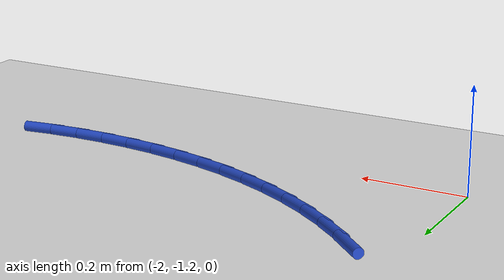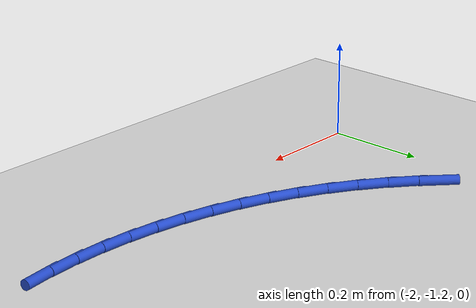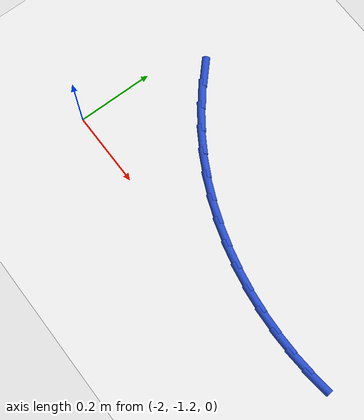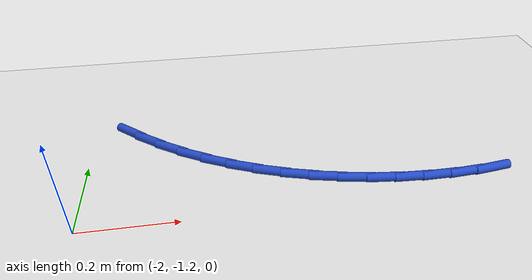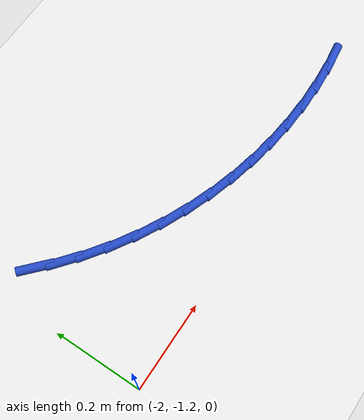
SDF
<sdf version="1.6">
 <world name="default">
  <model name="ground_plane">
   <static>1</static>
   <link name="link">
    <collision name="collision">
     <geometry><plane><normal>0 0 1</normal><size>100 100</size></plane></geometry>
     <surface><friction><ode><mu>100</mu><mu2>50</mu2></ode></friction></surface>
    </collision>
    <visual name="visual">
     <cast_shadows>0</cast_shadows>
     <geometry><plane><normal>0 0 1</normal><size>100 100</size></plane></geometry>
     <material>
      <script><uri>file://media/materials/scripts/gazebo.material</uri><name>Gazebo/WhiteGlow</name></script>
     </material>
    </visual>
   </link>
  </model>
  <model name="line">
   <link name="link_76">
    <pose>-1.9172609893093802 -0.8833066533043794 0.01 0 1.57 -0.7458619114485167</pose>
    <collision name="collision">
     <geometry><cylinder><radius>0.01</radius><length>0.08</length></cylinder></geometry>
    </collision>
    <visual name="visual">
     <material>
      <script><name>Gazebo/Blue</name><uri>file://media/materials/scripts/gazebo.material</uri></script>
     </material>
     <geometry><cylinder><radius>0.01</radius><length>0.08</length></cylinder></geometry>
    </visual>
   </link>
   <link name="link_77">
    <pose>-1.872279661193104 -0.9248647529805509 0.01 0 1.57 -0.6775343800400581</pose>
    <collision name="collision">
     <geometry><cylinder><radius>0.01</radius><length>0.08</length></cylinder></geometry>
    </collision>
    <visual name="visual">
     <material>
      <script><name>Gazebo/Blue</name><uri>file://media/materials/scripts/gazebo.material</uri></script>
     </material>
     <geometry><cylinder><radius>0.01</radius><length>0.08</length></cylinder></geometry>
    </visual>
   </link>
   <link name="link_78">
    <pose>-1.8244710815326126 -0.9633311303207989 0.01 0 1.57 -0.6099977329141425</pose>
    <collision name="collision">
     <geometry><cylinder><radius>0.01</radius><length>0.08</length></cylinder></geometry>
    </collision>
    <visual name="visual">
     <material>
      <script><name>Gazebo/Blue</name><uri>file://media/materials/scripts/gazebo.material</uri></script>
     </material>
     <geometry><cylinder><radius>0.01</radius><length>0.08</length></cylinder></geometry>
    </visual>
   </link>
   <link name="link_79">
    <pose>-1.7742758454492646 -0.9984133582308994 0.01 0 1.57 -0.5422740221765912</pose>
    <collision name="collision">
     <geometry><cylinder><radius>0.01</radius><length>0.08</length></cylinder></geometry>
    </collision>
    <visual name="visual">
     <material>
      <script><name>Gazebo/Blue</name><uri>file://media/materials/scripts/gazebo.material</uri></script>
     </material>
     <geometry><cylinder><radius>0.01</radius><length>0.08</length></cylinder></geometry>
    </visual>
   </link>
   <link name="link_80">
    <pose>-1.7221228256107384 -1.0298368545400967 0.01 0 1.57 -0.4751560326174189</pose>
    <collision name="collision">
     <geometry><cylinder><radius>0.01</radius><length>0.08</length></cylinder></geometry>
    </collision>
    <visual name="visual">
     <material>
      <script><name>Gazebo/Blue</name><uri>file://media/materials/scripts/gazebo.material</uri></script>
     </material>
     <geometry><cylinder><radius>0.01</radius><length>0.08</length></cylinder></geometry>
    </visual>
   </link>
   <link name="link_81">
    <pose>-1.6683143539741236 -1.057519668190263 0.01 0 1.57 -0.4095316053548192</pose>
    <collision name="collision">
     <geometry><cylinder><radius>0.01</radius><length>0.08</length></cylinder></geometry>
    </collision>
    <visual name="visual">
     <material>
      <script><name>Gazebo/Blue</name><uri>file://media/materials/scripts/gazebo.material</uri></script>
     </material>
     <geometry><cylinder><radius>0.01</radius><length>0.08</length></cylinder></geometry>
    </visual>
   </link>
   <link name="link_82">
    <pose>-1.6130755191483892 -1.0814974345665833 0.01 0 1.57 -0.34539493512004427</pose>
    <collision name="collision">
     <geometry><cylinder><radius>0.01</radius><length>0.08</length></cylinder></geometry>
    </collision>
    <visual name="visual">
     <material>
      <script><name>Gazebo/Blue</name><uri>file://media/materials/scripts/gazebo.material</uri></script>
     </material>
     <geometry><cylinder><radius>0.01</radius><length>0.08</length></cylinder></geometry>
    </visual>
   </link>
   <link name="link_83">
    <pose>-1.5566303061810116 -1.1018074689901067 0.01 0 1.57 -0.2826687631499256</pose>
    <collision name="collision">
     <geometry><cylinder><radius>0.01</radius><length>0.08</length></cylinder></geometry>
    </collision>
    <visual name="visual">
     <material>
      <script><name>Gazebo/Blue</name><uri>file://media/materials/scripts/gazebo.material</uri></script>
     </material>
     <geometry><cylinder><radius>0.01</radius><length>0.08</length></cylinder></geometry>
    </visual>
   </link>
   <link name="link_84">
    <pose>-1.4992027001194685 -1.1184870867818832 0.01 0 1.57 -0.22122714230969642</pose>
    <collision name="collision">
     <geometry><cylinder><radius>0.01</radius><length>0.08</length></cylinder></geometry>
    </collision>
    <visual name="visual">
     <material>
      <script><name>Gazebo/Blue</name><uri>file://media/materials/scripts/gazebo.material</uri></script>
     </material>
     <geometry><cylinder><radius>0.01</radius><length>0.08</length></cylinder></geometry>
    </visual>
   </link>
   <link name="link_85">
    <pose>-1.4410166860112354 -1.1315736032629617 0.01 0 1.57 -0.1609037397368555</pose>
    <collision name="collision">
     <geometry><cylinder><radius>0.01</radius><length>0.08</length></cylinder></geometry>
    </collision>
    <visual name="visual">
     <material>
      <script><name>Gazebo/Blue</name><uri>file://media/materials/scripts/gazebo.material</uri></script>
     </material>
     <geometry><cylinder><radius>0.01</radius><length>0.08</length></cylinder></geometry>
    </visual>
   </link>
   <link name="link_86">
    <pose>-1.3822962489037909 -1.1411043337543902 0.01 0 1.57 -0.10149941466510877</pose>
    <collision name="collision">
     <geometry><cylinder><radius>0.01</radius><length>0.08</length></cylinder></geometry>
    </collision>
    <visual name="visual">
     <material>
      <script><name>Gazebo/Blue</name><uri>file://media/materials/scripts/gazebo.material</uri></script>
     </material>
     <geometry><cylinder><radius>0.01</radius><length>0.08</length></cylinder></geometry>
    </visual>
   </link>
   <link name="link_87">
    <pose>-1.3232653738446112 -1.1471165935772185 0.01 0 1.57 -0.04278880078666588</pose>
    <collision name="collision">
     <geometry><cylinder><radius>0.01</radius><length>0.08</length></cylinder></geometry>
    </collision>
    <visual name="visual">
     <material>
      <script><name>Gazebo/Blue</name><uri>file://media/materials/scripts/gazebo.material</uri></script>
     </material>
     <geometry><cylinder><radius>0.01</radius><length>0.08</length></cylinder></geometry>
    </visual>
   </link>
   <link name="link_88">
    <pose>-1.264148045881174 -1.149647698052495 0.01 0 1.57 0.015474158328116822</pose>
    <collision name="collision">
     <geometry><cylinder><radius>0.01</radius><length>0.08</length></cylinder></geometry>
    </collision>
    <visual name="visual">
     <material>
      <script><name>Gazebo/Blue</name><uri>file://media/materials/scripts/gazebo.material</uri></script>
     </material>
     <geometry><cylinder><radius>0.01</radius><length>0.08</length></cylinder></geometry>
    </visual>
   </link>
   <link name="link_89">
    <pose>-1.2051682500609548 -1.1487349625012697 0.01 0 1.57 0.0735516073285092</pose>
    <collision name="collision">
     <geometry><cylinder><radius>0.01</radius><length>0.08</length></cylinder></geometry>
    </collision>
    <visual name="visual">
     <material>
      <script><name>Gazebo/Blue</name><uri>file://media/materials/scripts/gazebo.material</uri></script>
     </material>
     <geometry><cylinder><radius>0.01</radius><length>0.08</length></cylinder></geometry>
    </visual>
   </link>
   <link name="link_90">
    <pose>-1.146549971431432 -1.1444157022445902 0.01 0 1.57 0.1317178781771592</pose>
    <collision name="collision">
     <geometry><cylinder><radius>0.01</radius><length>0.08</length></cylinder></geometry>
    </collision>
    <visual name="visual">
     <material>
      <script><name>Gazebo/Blue</name><uri>file://media/materials/scripts/gazebo.material</uri></script>
     </material>
     <geometry><cylinder><radius>0.01</radius><length>0.08</length></cylinder></geometry>
    </visual>
   </link>
  </model>
 </world>
</sdf>
